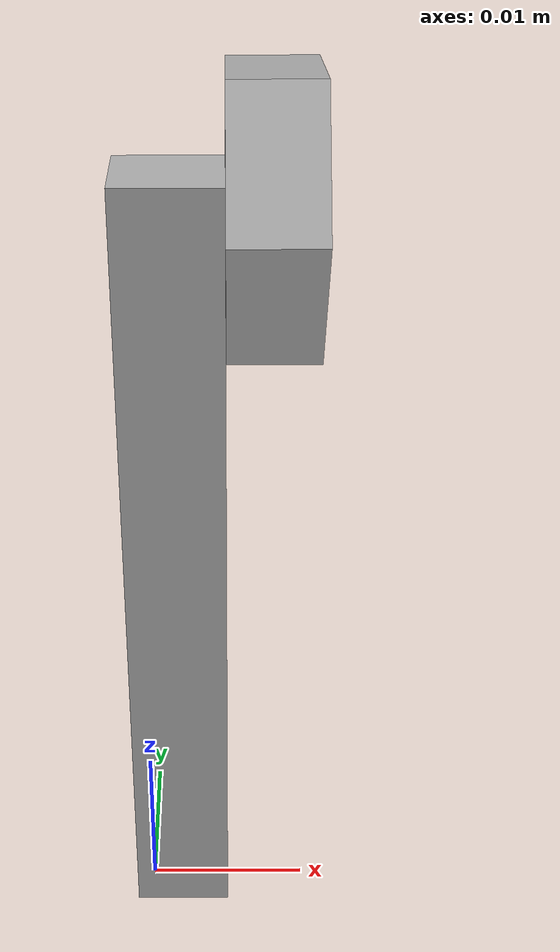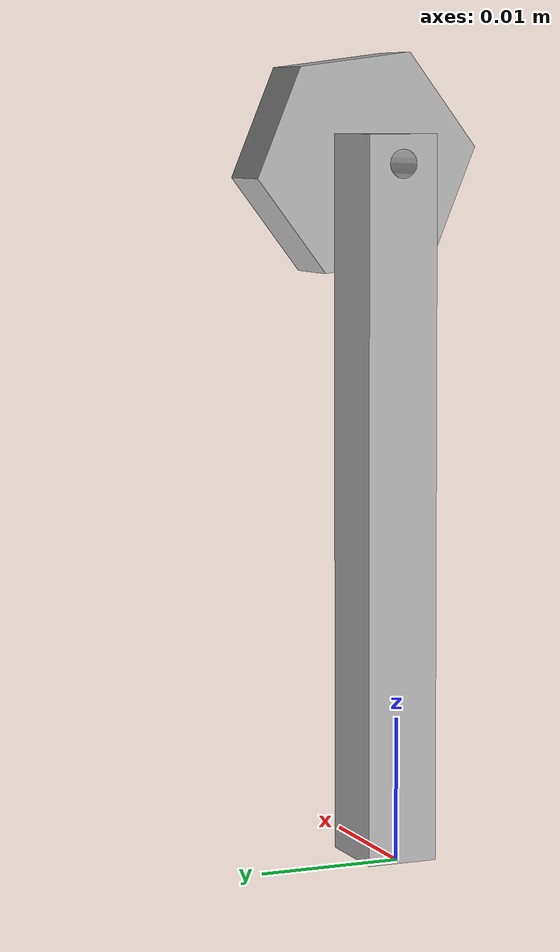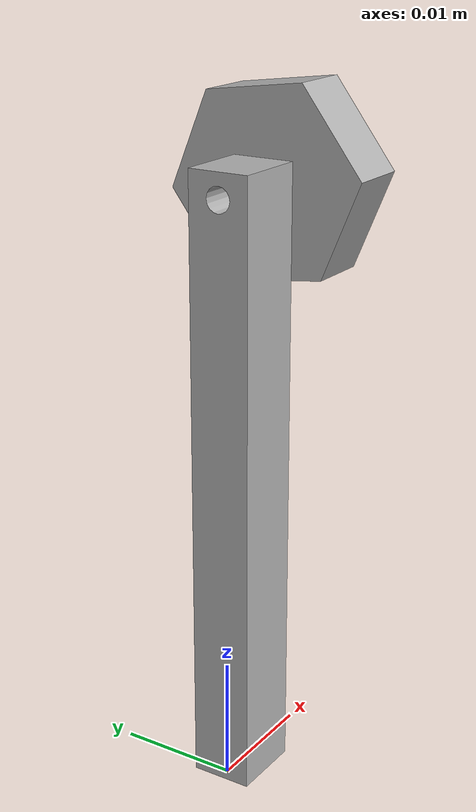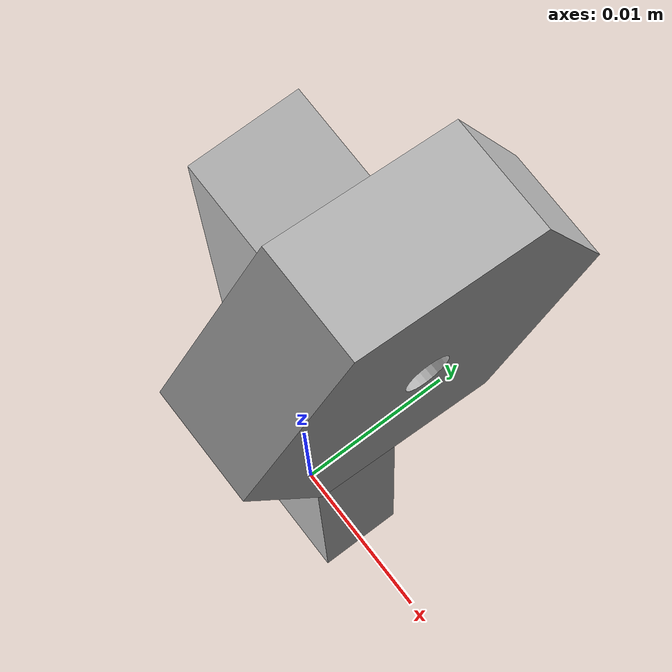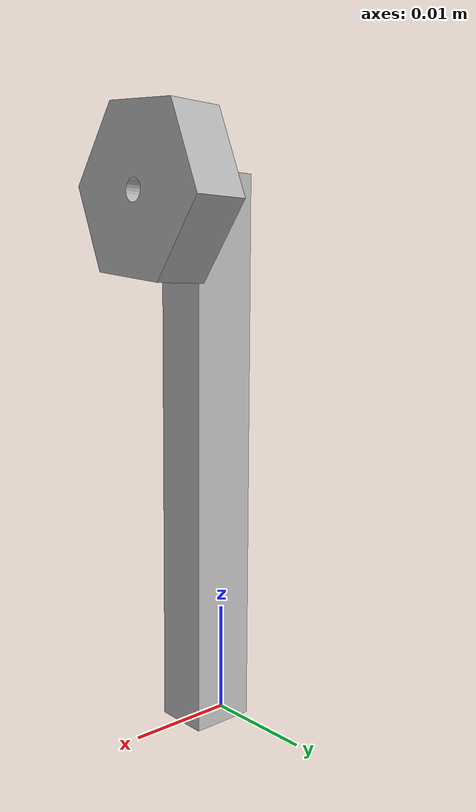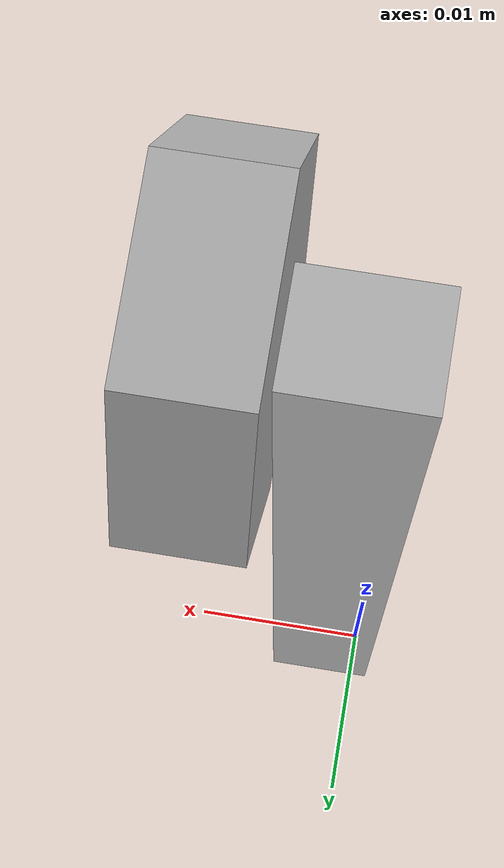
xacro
<?xml version="1.0" ?>
<robot name="controller_test" xmlns:xacro="http://www.ros.org/wiki/xacro">

<xacro:include filename="$(find controller_test_description)/urdf/materials.xacro" />
<xacro:include filename="$(find controller_test_description)/urdf/controller_test.trans" />
<xacro:include filename="$(find controller_test_description)/urdf/controller_test.gazebo" />
<link name="base_link">
  <inertial>
    <origin xyz="0.019999999999999997 2.1997332847243283e-06 0.24707295239367036" rpy="0 0 0"/>
    <mass value="11.62703098601592"/>
    <inertia ixx="0.239831" iyy="0.24087" izz="0.005938" ixy="-0.0" iyz="-6e-06" ixz="-0.0"/>
  </inertial>
  <visual>
    <origin xyz="0 0 0" rpy="0 0 0"/>
    <geometry>
      <mesh filename="file://$(find controller_test_description)/meshes/base_link.stl" scale="0.001 0.001 0.001"/>
    </geometry>
    <material name="silver"/>
  </visual>
  <collision>
    <origin xyz="0 0 0" rpy="0 0 0"/>
    <geometry>
      <mesh filename="file://$(find controller_test_description)/meshes/base_link.stl" scale="0.001 0.001 0.001"/>
    </geometry>
  </collision>
</link>

<link name="link_helice_1">
  <inertial>
    <origin xyz="0.024999999999999994 1.5052039197550036e-07 0.0" rpy="0 0 0"/>
    <mass value="6.7887985701347455"/>
    <inertia ixx="0.019516" iyy="0.011172" izz="0.011172" ixy="0.0" iyz="0.0" ixz="-0.0"/>
  </inertial>
  <visual>
    <origin xyz="-0.05 0.000173 -0.48" rpy="0 0 0"/>
    <geometry>
      <mesh filename="file://$(find controller_test_description)/meshes/link_helice_1.stl" scale="0.001 0.001 0.001"/>
    </geometry>
    <material name="silver"/>
  </visual>
  <collision>
    <origin xyz="-0.05 0.000173 -0.48" rpy="0 0 0"/>
    <geometry>
      <mesh filename="file://$(find controller_test_description)/meshes/link_helice_1.stl" scale="0.001 0.001 0.001"/>
    </geometry>
  </collision>
</link>

<joint name="Revolute 1" type="continuous">
  <origin xyz="0.05 -0.000173 0.48" rpy="0 0 0"/>
  <parent link="base_link"/>
  <child link="link_helice_1"/>
  <axis xyz="-1.0 0.0 0.0"/>
</joint>

</robot>

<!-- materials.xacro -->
<robot name="controller_test" xmlns:xacro="http://www.ros.org/wiki/xacro" >

<material name="silver">
  <color rgba="0.700 0.700 0.700 1.000"/>
</material>

</robot>

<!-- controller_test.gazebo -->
<robot name="controller_test" xmlns:xacro="http://www.ros.org/wiki/xacro" >

<xacro:property name="body_color" value="Gazebo/Silver" />

<gazebo>
  <plugin name="control" filename="libgazebo_ros_control.so"/>
</gazebo>
<gazebo reference="base_link">
  <material>${body_color}</material>
  <mu1>0.2</mu1>
  <mu2>0.2</mu2>
  <self_collide>true</self_collide>
  <gravity>true</gravity>
</gazebo>

<gazebo reference="link_helice_1">
  <material>${body_color}</material>
  <mu1>0.2</mu1>
  <mu2>0.2</mu2>
  <self_collide>true</self_collide>
</gazebo>

</robot>
